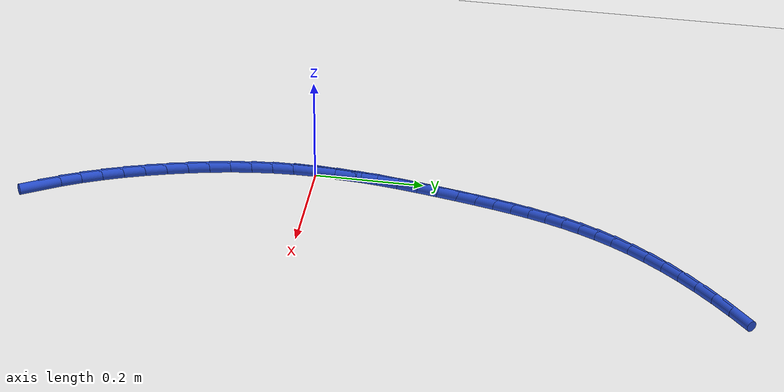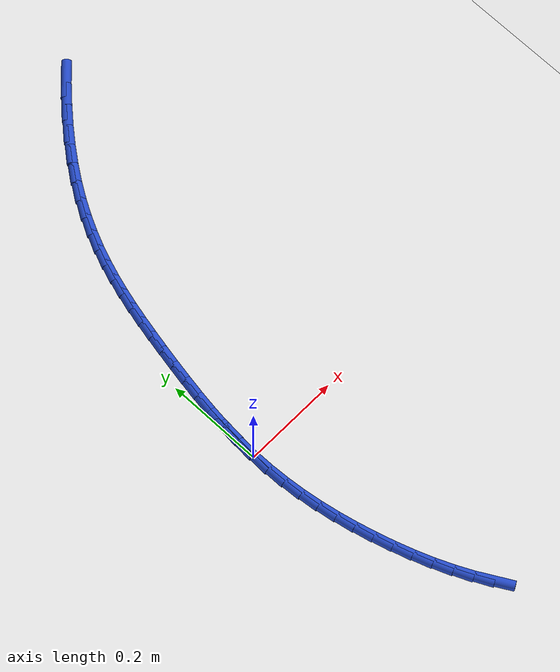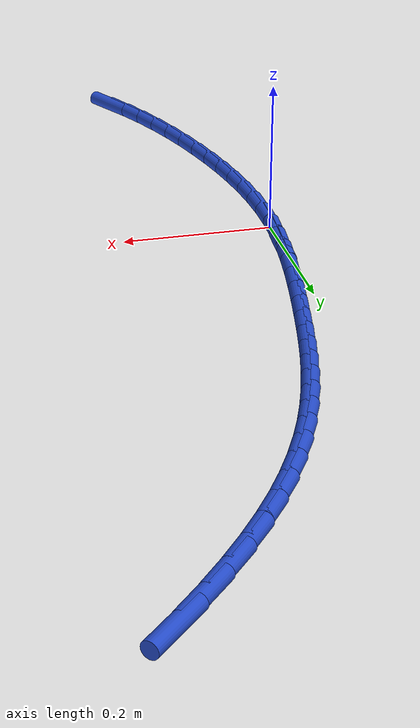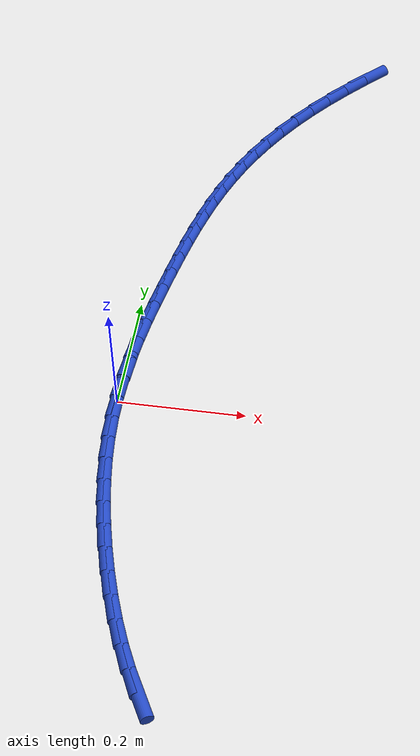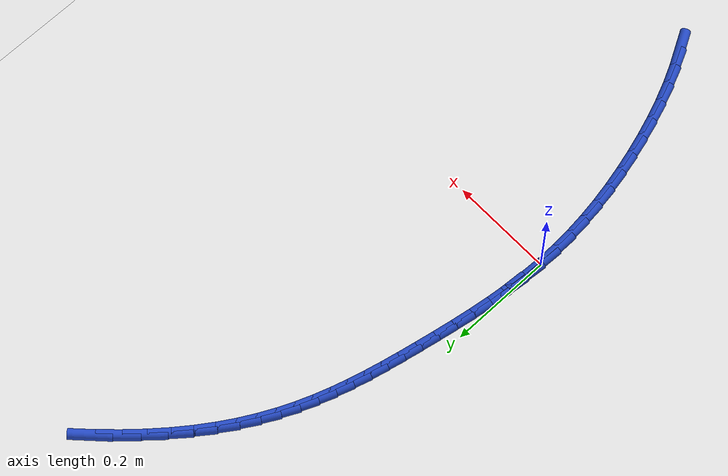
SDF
<sdf version="1.6">
 <world name="default">
  <model name="ground_plane">
   <static>1</static>
   <link name="link">
    <collision name="collision">
     <geometry><plane><normal>0 0 1</normal><size>100 100</size></plane></geometry>
     <surface><friction><ode><mu>100</mu><mu2>50</mu2></ode></friction></surface>
    </collision>
    <visual name="visual">
     <cast_shadows>0</cast_shadows>
     <geometry><plane><normal>0 0 1</normal><size>100 100</size></plane></geometry>
     <material>
      <script><uri>file://media/materials/scripts/gazebo.material</uri><name>Gazebo/WhiteGlow</name></script>
     </material>
    </visual>
   </link>
  </model>
  <model name="line">
   <link name="link_0">
    <pose>-1.474514954580286e-17 6.938893903907228e-17 0.01 0 1.57 1.529217470254292</pose>
    <collision name="collision">
     <geometry><cylinder><radius>0.01</radius><length>0.08</length></cylinder></geometry>
    </collision>
    <visual name="visual">
     <material>
      <script><name>Gazebo/Blue</name><uri>file://media/materials/scripts/gazebo.material</uri></script>
     </material>
     <geometry><cylinder><radius>0.01</radius><length>0.08</length></cylinder></geometry>
    </visual>
   </link>
   <link name="link_1">
    <pose>0.0016310443957835209 0.0392051274573912 0.01 0 1.57 1.4876997858208576</pose>
    <collision name="collision">
     <geometry><cylinder><radius>0.01</radius><length>0.08</length></cylinder></geometry>
    </collision>
    <visual name="visual">
     <material>
      <script><name>Gazebo/Blue</name><uri>file://media/materials/scripts/gazebo.material</uri></script>
     </material>
     <geometry><cylinder><radius>0.01</radius><length>0.08</length></cylinder></geometry>
    </visual>
   </link>
   <link name="link_2">
    <pose>0.004903020315258443 0.07849005286956687 0.01 0 1.57 1.4530320091685873</pose>
    <collision name="collision">
     <geometry><cylinder><radius>0.01</radius><length>0.08</length></cylinder></geometry>
    </collision>
    <visual name="visual">
     <material>
      <script><name>Gazebo/Blue</name><uri>file://media/materials/scripts/gazebo.material</uri></script>
     </material>
     <geometry><cylinder><radius>0.01</radius><length>0.08</length></cylinder></geometry>
    </visual>
   </link>
   <link name="link_3">
    <pose>0.009534512002205951 0.11763655705090215 0.01 0 1.57 1.4246528545393173</pose>
    <collision name="collision">
     <geometry><cylinder><radius>0.01</radius><length>0.08</length></cylinder></geometry>
    </collision>
    <visual name="visual">
     <material>
      <script><name>Gazebo/Blue</name><uri>file://media/materials/scripts/gazebo.material</uri></script>
     </material>
     <geometry><cylinder><radius>0.01</radius><length>0.08</length></cylinder></geometry>
    </visual>
   </link>
   <link name="link_4">
    <pose>0.015244103700407232 0.156426420815772 0.01 0 1.57 1.402158840541124</pose>
    <collision name="collision">
     <geometry><cylinder><radius>0.01</radius><length>0.08</length></cylinder></geometry>
    </collision>
    <visual name="visual">
     <material>
      <script><name>Gazebo/Blue</name><uri>file://media/materials/scripts/gazebo.material</uri></script>
     </material>
     <geometry><cylinder><radius>0.01</radius><length>0.08</length></cylinder></geometry>
    </visual>
   </link>
   <link name="link_5">
    <pose>0.021750379653643487 0.19464142497855144 0.01 0 1.57 1.3853210242000125</pose>
    <collision name="collision">
     <geometry><cylinder><radius>0.01</radius><length>0.08</length></cylinder></geometry>
    </collision>
    <visual name="visual">
     <material>
      <script><name>Gazebo/Blue</name><uri>file://media/materials/scripts/gazebo.material</uri></script>
     </material>
     <geometry><cylinder><radius>0.01</radius><length>0.08</length></cylinder></geometry>
    </visual>
   </link>
   <link name="link_6">
    <pose>0.028771924105695915 0.23206335035361553 0.01 0 1.57 1.3740706435438526</pose>
    <collision name="collision">
     <geometry><cylinder><radius>0.01</radius><length>0.08</length></cylinder></geometry>
    </collision>
    <visual name="visual">
     <material>
      <script><name>Gazebo/Blue</name><uri>file://media/materials/scripts/gazebo.material</uri></script>
     </material>
     <geometry><cylinder><radius>0.01</radius><length>0.08</length></cylinder></geometry>
    </visual>
   </link>
   <link name="link_7">
    <pose>0.03602891880428261 0.2684751421928187 0.01 0 1.57 1.36485016169059</pose>
    <collision name="collision">
     <geometry><cylinder><radius>0.01</radius><length>0.08</length></cylinder></geometry>
    </collision>
    <visual name="visual">
     <material>
      <script><name>Gazebo/Blue</name><uri>file://media/materials/scripts/gazebo.material</uri></script>
     </material>
     <geometry><cylinder><radius>0.01</radius><length>0.08</length></cylinder></geometry>
    </visual>
   </link>
   <link name="link_8">
    <pose>0.04340400543061128 0.3037781645081384 0.01 0 1.57 1.3507237780344403</pose>
    <collision name="collision">
     <geometry><cylinder><radius>0.01</radius><length>0.08</length></cylinder></geometry>
    </collision>
    <visual name="visual">
     <material>
      <script><name>Gazebo/Blue</name><uri>file://media/materials/scripts/gazebo.material</uri></script>
     </material>
     <geometry><cylinder><radius>0.01</radius><length>0.08</length></cylinder></geometry>
    </visual>
   </link>
   <link name="link_9">
    <pose>0.051079987475844475 0.33809257242273466 0.01 0 1.57 1.3307526759660895</pose>
    <collision name="collision">
     <geometry><cylinder><radius>0.01</radius><length>0.08</length></cylinder></geometry>
    </collision>
    <visual name="visual">
     <material>
      <script><name>Gazebo/Blue</name><uri>file://media/materials/scripts/gazebo.material</uri></script>
     </material>
     <geometry><cylinder><radius>0.01</radius><length>0.08</length></cylinder></geometry>
    </visual>
   </link>
   <link name="link_10">
    <pose>0.05927210397059078 0.3715621636667952 0.01 0 1.57 1.3049247470604315</pose>
    <collision name="collision">
     <geometry><cylinder><radius>0.01</radius><length>0.08</length></cylinder></geometry>
    </collision>
    <visual name="visual">
     <material>
      <script><name>Gazebo/Blue</name><uri>file://media/materials/scripts/gazebo.material</uri></script>
     </material>
     <geometry><cylinder><radius>0.01</radius><length>0.08</length></cylinder></geometry>
    </visual>
   </link>
   <link name="link_11">
    <pose>0.06819559394545867 0.4043307359705069 0.01 0 1.57 1.2734629107374766</pose>
    <collision name="collision">
     <geometry><cylinder><radius>0.01</radius><length>0.08</length></cylinder></geometry>
    </collision>
    <visual name="visual">
     <material>
      <script><name>Gazebo/Blue</name><uri>file://media/materials/scripts/gazebo.material</uri></script>
     </material>
     <geometry><cylinder><radius>0.01</radius><length>0.08</length></cylinder></geometry>
    </visual>
   </link>
   <link name="link_12">
    <pose>0.07806569643105674 0.43654208706405717 0.01 0 1.57 1.2368506947610896</pose>
    <collision name="collision">
     <geometry><cylinder><radius>0.01</radius><length>0.08</length></cylinder></geometry>
    </collision>
    <visual name="visual">
     <material>
      <script><name>Gazebo/Blue</name><uri>file://media/materials/scripts/gazebo.material</uri></script>
     </material>
     <geometry><cylinder><radius>0.01</radius><length>0.08</length></cylinder></geometry>
    </visual>
   </link>
   <link name="link_13">
    <pose>0.08909765045799348 0.46834001467763303 0.01 0 1.57 1.1958329322564842</pose>
    <collision name="collision">
     <geometry><cylinder><radius>0.01</radius><length>0.08</length></cylinder></geometry>
    </collision>
    <visual name="visual">
     <material>
      <script><name>Gazebo/Blue</name><uri>file://media/materials/scripts/gazebo.material</uri></script>
     </material>
     <geometry><cylinder><radius>0.01</radius><length>0.08</length></cylinder></geometry>
    </visual>
   </link>
   <link name="link_14">
    <pose>0.10150669505687746 0.499868316541422 0.01 0 1.57 1.151383458375795</pose>
    <collision name="collision">
     <geometry><cylinder><radius>0.01</radius><length>0.08</length></cylinder></geometry>
    </collision>
    <visual name="visual">
     <material>
      <script><name>Gazebo/Blue</name><uri>file://media/materials/scripts/gazebo.material</uri></script>
     </material>
     <geometry><cylinder><radius>0.01</radius><length>0.08</length></cylinder></geometry>
    </visual>
   </link>
   <link name="link_15">
    <pose>0.11550806925831719 0.5312707903856111 0.01 0 1.57 1.1046383283907326</pose>
    <collision name="collision">
     <geometry><cylinder><radius>0.01</radius><length>0.08</length></cylinder></geometry>
    </collision>
    <visual name="visual">
     <material>
      <script><name>Gazebo/Blue</name><uri>file://media/materials/scripts/gazebo.material</uri></script>
     </material>
     <geometry><cylinder><radius>0.01</radius><length>0.08</length></cylinder></geometry>
    </visual>
   </link>
   <link name="link_16">
    <pose>0.1313170120929212 0.5626912339403876 0.01 0 1.57 1.056802621539264</pose>
    <collision name="collision">
     <geometry><cylinder><radius>0.01</radius><length>0.08</length></cylinder></geometry>
    </collision>
    <visual name="visual">
     <material>
      <script><name>Gazebo/Blue</name><uri>file://media/materials/scripts/gazebo.material</uri></script>
     </material>
     <geometry><cylinder><radius>0.01</radius><length>0.08</length></cylinder></geometry>
    </visual>
   </link>
   <link name="link_17">
    <pose>0.1491487625912981 0.5942734449359389 0.01 0 1.57 1.0090475129470196</pose>
    <collision name="collision">
     <geometry><cylinder><radius>0.01</radius><length>0.08</length></cylinder></geometry>
    </collision>
    <visual name="visual">
     <material>
      <script><name>Gazebo/Blue</name><uri>file://media/materials/scripts/gazebo.material</uri></script>
     </material>
     <geometry><cylinder><radius>0.01</radius><length>0.08</length></cylinder></geometry>
    </visual>
   </link>
   <link name="link_18">
    <pose>0.16921855978405637 0.6261612211024521 0.01 0 1.57 0.9624176905310876</pose>
    <collision name="collision">
     <geometry><cylinder><radius>0.01</radius><length>0.08</length></cylinder></geometry>
    </collision>
    <visual name="visual">
     <material>
      <script><name>Gazebo/Blue</name><uri>file://media/materials/scripts/gazebo.material</uri></script>
     </material>
     <geometry><cylinder><radius>0.01</radius><length>0.08</length></cylinder></geometry>
    </visual>
   </link>
   <link name="link_19">
    <pose>0.19174164270180455 0.6584983601701142 0.01 0 1.57 0.9177655040409061</pose>
    <collision name="collision">
     <geometry><cylinder><radius>0.01</radius><length>0.08</length></cylinder></geometry>
    </collision>
    <visual name="visual">
     <material>
      <script><name>Gazebo/Blue</name><uri>file://media/materials/scripts/gazebo.material</uri></script>
     </material>
     <geometry><cylinder><radius>0.01</radius><length>0.08</length></cylinder></geometry>
    </visual>
   </link>
   <link name="link_20">
    <pose>0.21693325037515118 0.691428659869113 0.01 0 1.57 0.8757194259328742</pose>
    <collision name="collision">
     <geometry><cylinder><radius>0.01</radius><length>0.08</length></cylinder></geometry>
    </collision>
    <visual name="visual">
     <material>
      <script><name>Gazebo/Blue</name><uri>file://media/materials/scripts/gazebo.material</uri></script>
     </material>
     <geometry><cylinder><radius>0.01</radius><length>0.08</length></cylinder></geometry>
    </visual>
   </link>
   <link name="link_21">
    <pose>0.2450086218347048 0.7250959179296352 0.01 0 1.57 0.8366848180534597</pose>
    <collision name="collision">
     <geometry><cylinder><radius>0.01</radius><length>0.08</length></cylinder></geometry>
    </collision>
    <visual name="visual">
     <material>
      <script><name>Gazebo/Blue</name><uri>file://media/materials/scripts/gazebo.material</uri></script>
     </material>
     <geometry><cylinder><radius>0.01</radius><length>0.08</length></cylinder></geometry>
    </visual>
   </link>
   <link name="link_22">
    <pose>0.276182996111074 0.7596439320818684 0.01 0 1.57 0.8008684325504353</pose>
    <collision name="collision">
     <geometry><cylinder><radius>0.01</radius><length>0.08</length></cylinder></geometry>
    </collision>
    <visual name="visual">
     <material>
      <script><name>Gazebo/Blue</name><uri>file://media/materials/scripts/gazebo.material</uri></script>
     </material>
     <geometry><cylinder><radius>0.01</radius><length>0.08</length></cylinder></geometry>
    </visual>
   </link>
   <link name="link_23">
    <pose>0.3106716122348672 0.7952165000559996 0.01 0 1.57 0.7683158995567205</pose>
    <collision name="collision">
     <geometry><cylinder><radius>0.01</radius><length>0.08</length></cylinder></geometry>
    </collision>
    <visual name="visual">
     <material>
      <script><name>Gazebo/Blue</name><uri>file://media/materials/scripts/gazebo.material</uri></script>
     </material>
     <geometry><cylinder><radius>0.01</radius><length>0.08</length></cylinder></geometry>
    </visual>
   </link>
   <link name="link_227">
    <pose>0.12495112060769822 -0.48536602955380065 0.01 0 1.57 -1.063295735883499</pose>
    <collision name="collision">
     <geometry><cylinder><radius>0.01</radius><length>0.08</length></cylinder></geometry>
    </collision>
    <visual name="visual">
     <material>
      <script><name>Gazebo/Blue</name><uri>file://media/materials/scripts/gazebo.material</uri></script>
     </material>
     <geometry><cylinder><radius>0.01</radius><length>0.08</length></cylinder></geometry>
    </visual>
   </link>
   <link name="link_228">
    <pose>0.10661520365138856 -0.45239261635603106 0.01 0 1.57 -1.118571901898657</pose>
    <collision name="collision">
     <geometry><cylinder><radius>0.01</radius><length>0.08</length></cylinder></geometry>
    </collision>
    <visual name="visual">
     <material>
      <script><name>Gazebo/Blue</name><uri>file://media/materials/scripts/gazebo.material</uri></script>
     </material>
     <geometry><cylinder><radius>0.01</radius><length>0.08</length></cylinder></geometry>
    </visual>
   </link>
   <link name="link_229">
    <pose>0.08979228391252739 -0.4177634112245145 0.01 0 1.57 -1.1674327092485912</pose>
    <collision name="collision">
     <geometry><cylinder><radius>0.01</radius><length>0.08</length></cylinder></geometry>
    </collision>
    <visual name="visual">
     <material>
      <script><name>Gazebo/Blue</name><uri>file://media/materials/scripts/gazebo.material</uri></script>
     </material>
     <geometry><cylinder><radius>0.01</radius><length>0.08</length></cylinder></geometry>
    </visual>
   </link>
   <link name="link_230">
    <pose>0.07444300096432449 -0.3817967138402329 0.01 0 1.57 -1.2109523503279067</pose>
    <collision name="collision">
     <geometry><cylinder><radius>0.01</radius><length>0.08</length></cylinder></geometry>
    </collision>
    <visual name="visual">
     <material>
      <script><name>Gazebo/Blue</name><uri>file://media/materials/scripts/gazebo.material</uri></script>
     </material>
     <geometry><cylinder><radius>0.01</radius><length>0.08</length></cylinder></geometry>
    </visual>
   </link>
   <link name="link_231">
    <pose>0.06052799437999071 -0.3448108238841704 0.01 0 1.57 -1.2500531813794444</pose>
    <collision name="collision">
     <geometry><cylinder><radius>0.01</radius><length>0.08</length></cylinder></geometry>
    </collision>
    <visual name="visual">
     <material>
      <script><name>Gazebo/Blue</name><uri>file://media/materials/scripts/gazebo.material</uri></script>
     </material>
     <geometry><cylinder><radius>0.01</radius><length>0.08</length></cylinder></geometry>
    </visual>
   </link>
   <link name="link_232">
    <pose>0.048007903732735766 -0.30712404103730845 0.01 0 1.57 -1.2855269351844079</pose>
    <collision name="collision">
     <geometry><cylinder><radius>0.01</radius><length>0.08</length></cylinder></geometry>
    </collision>
    <visual name="visual">
     <material>
      <script><name>Gazebo/Blue</name><uri>file://media/materials/scripts/gazebo.material</uri></script>
     </material>
     <geometry><cylinder><radius>0.01</radius><length>0.08</length></cylinder></geometry>
    </visual>
   </link>
   <link name="link_233">
    <pose>0.036843368595769775 -0.26905466498062997 0.01 0 1.57 -1.318422013510654</pose>
    <collision name="collision">
     <geometry><cylinder><radius>0.01</radius><length>0.08</length></cylinder></geometry>
    </collision>
    <visual name="visual">
     <material>
      <script><name>Gazebo/Blue</name><uri>file://media/materials/scripts/gazebo.material</uri></script>
     </material>
     <geometry><cylinder><radius>0.01</radius><length>0.08</length></cylinder></geometry>
    </visual>
   </link>
   <link name="link_234">
    <pose>0.027003582085770323 -0.23089711211411598 0.01 0 1.57 -1.3525281157318134</pose>
    <collision name="collision">
     <geometry><cylinder><radius>0.01</radius><length>0.08</length></cylinder></geometry>
    </collision>
    <visual name="visual">
     <material>
      <script><name>Gazebo/Blue</name><uri>file://media/materials/scripts/gazebo.material</uri></script>
     </material>
     <geometry><cylinder><radius>0.01</radius><length>0.08</length></cylinder></geometry>
    </visual>
   </link>
   <link name="link_235">
    <pose>0.018536892688266055 -0.19272478050491254 0.01 0 1.57 -1.389654788419222</pose>
    <collision name="collision">
     <geometry><cylinder><radius>0.01</radius><length>0.08</length></cylinder></geometry>
    </collision>
    <visual name="visual">
     <material>
      <script><name>Gazebo/Blue</name><uri>file://media/materials/scripts/gazebo.material</uri></script>
     </material>
     <geometry><cylinder><radius>0.01</radius><length>0.08</length></cylinder></geometry>
    </visual>
   </link>
   <link name="link_236">
    <pose>0.01153449103436311 -0.15449144399595846 0.01 0 1.57 -1.4296888968256354</pose>
    <collision name="collision">
     <geometry><cylinder><radius>0.01</radius><length>0.08</length></cylinder></geometry>
    </collision>
    <visual name="visual">
     <material>
      <script><name>Gazebo/Blue</name><uri>file://media/materials/scripts/gazebo.material</uri></script>
     </material>
     <geometry><cylinder><radius>0.01</radius><length>0.08</length></cylinder></geometry>
    </visual>
   </link>
   <link name="link_237">
    <pose>0.006087989031323261 -0.11614970013912218 0.01 0 1.57 -1.472433441219932</pose>
    <collision name="collision">
     <geometry><cylinder><radius>0.01</radius><length>0.08</length></cylinder></geometry>
    </collision>
    <visual name="visual">
     <material>
      <script><name>Gazebo/Blue</name><uri>file://media/materials/scripts/gazebo.material</uri></script>
     </material>
     <geometry><cylinder><radius>0.01</radius><length>0.08</length></cylinder></geometry>
    </visual>
   </link>
   <link name="link_238">
    <pose>0.002288998586408193 -0.0776521464862707 0.01 0 1.57 -1.5176210197090423</pose>
    <collision name="collision">
     <geometry><cylinder><radius>0.01</radius><length>0.08</length></cylinder></geometry>
    </collision>
    <visual name="visual">
     <material>
      <script><name>Gazebo/Blue</name><uri>file://media/materials/scripts/gazebo.material</uri></script>
     </material>
     <geometry><cylinder><radius>0.01</radius><length>0.08</length></cylinder></geometry>
    </visual>
   </link>
   <link name="link_239">
    <pose>0.0002291316068798871 -0.03895138058927425 0.01 0 1.57 -1.564913891807383</pose>
    <collision name="collision">
     <geometry><cylinder><radius>0.01</radius><length>0.08</length></cylinder></geometry>
    </collision>
    <visual name="visual">
     <material>
      <script><name>Gazebo/Blue</name><uri>file://media/materials/scripts/gazebo.material</uri></script>
     </material>
     <geometry><cylinder><radius>0.01</radius><length>0.08</length></cylinder></geometry>
    </visual>
   </link>
   <link name="link_240">
    <pose>-8.673617379884035e-18 -7.632783294297951e-17 0.01 0 1.57 1.5276831440548089</pose>
    <collision name="collision">
     <geometry><cylinder><radius>0.01</radius><length>0.08</length></cylinder></geometry>
    </collision>
    <visual name="visual">
     <material>
      <script><name>Gazebo/Blue</name><uri>file://media/materials/scripts/gazebo.material</uri></script>
     </material>
     <geometry><cylinder><radius>0.01</radius><length>0.08</length></cylinder></geometry>
    </visual>
   </link>
   <link name="link_241">
    <pose>0.00169321567303027 0.03924939772968368 0.01 0 1.57 1.4774407017912412</pose>
    <collision name="collision">
     <geometry><cylinder><radius>0.01</radius><length>0.08</length></cylinder></geometry>
    </collision>
    <visual name="visual">
     <material>
      <script><name>Gazebo/Blue</name><uri>file://media/materials/scripts/gazebo.material</uri></script>
     </material>
     <geometry><cylinder><radius>0.01</radius><length>0.08</length></cylinder></geometry>
    </visual>
   </link>
   <link name="link_242">
    <pose>0.005400390533232505 0.07884421504790884 0.01 0 1.57 1.5024086976843307</pose>
    <collision name="collision">
     <geometry><cylinder><radius>0.01</radius><length>0.08</length></cylinder></geometry>
    </collision>
    <visual name="visual">
     <material>
      <script><name>Gazebo/Blue</name><uri>file://media/materials/scripts/gazebo.material</uri></script>
     </material>
     <geometry><cylinder><radius>0.01</radius><length>0.08</length></cylinder></geometry>
    </visual>
   </link>
  </model>
 </world>
</sdf>
